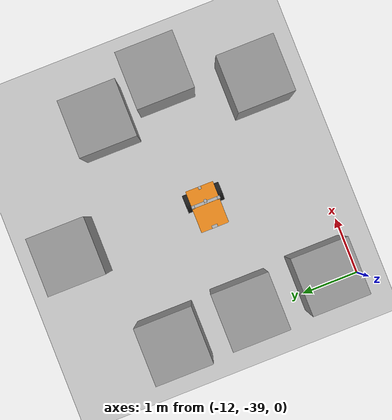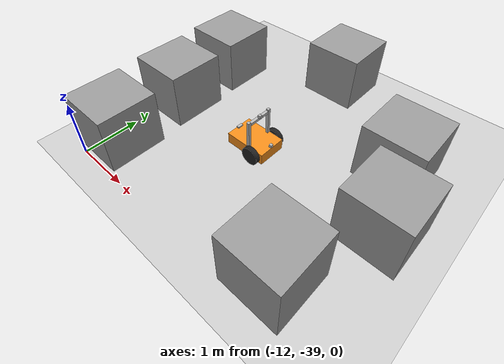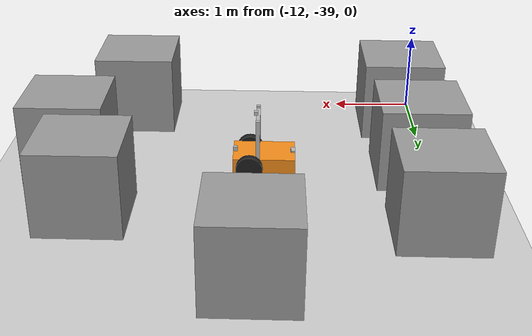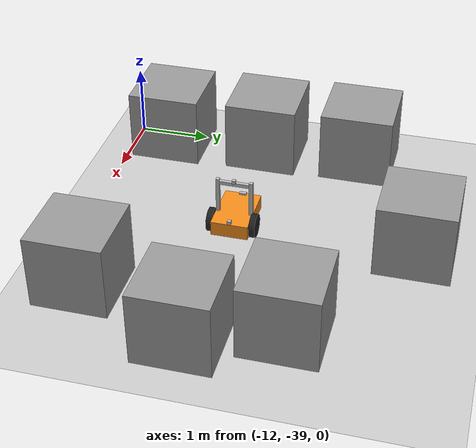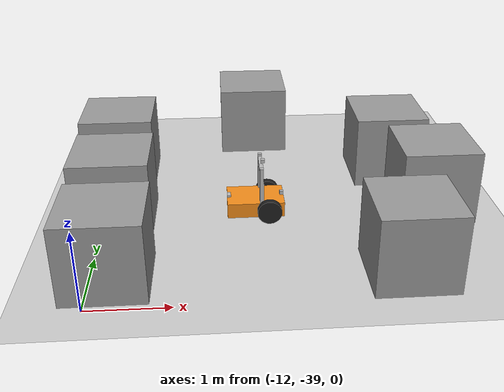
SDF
<sdf version="1.6">
 <world name="default">
  <light name="sun" type="directional">
   <pose>0 0 10 0 -0 0</pose>
   <diffuse>0.8 0.8 0.8 1</diffuse>
   <specular>0.2 0.2 0.2 1</specular>
   <attenuation>
    <range>1000</range>
    <constant>0.9</constant>
    <linear>0.01</linear>
    <quadratic>0.001</quadratic>
   </attenuation>
   <direction>-0.5 0.1 -0.9</direction>
  </light>
  <model name="ground_plane">
   <static>1</static>
   <link name="link">
    <collision name="collision">
     <geometry><plane><normal>0 0 1</normal><size>100 100</size></plane></geometry>
     <surface>
      <contact><collide_bitmask>65535</collide_bitmask></contact>
      <friction><ode><mu>100</mu><mu2>50</mu2></ode></friction>
     </surface>
    </collision>
    <visual name="visual">
     <cast_shadows>0</cast_shadows>
     <geometry><plane><normal>0 0 1</normal><size>100 100</size></plane></geometry>
     <material>
      <script><uri>file://media/materials/scripts/gazebo.material</uri><name>Gazebo/Grey</name></script>
     </material>
    </visual>
   </link>
  </model>
  <gravity>0 0 -9.8</gravity>
  <magnetic_field>6e-06 2.3e-05 -4.2e-05</magnetic_field>
  <atmosphere type="adiabatic"/>
  <physics name="default_physics" default="0" type="ode">
   <max_step_size>0.001</max_step_size>
   <real_time_factor>1</real_time_factor>
   <real_time_update_rate>1000</real_time_update_rate>
  </physics>
  <scene><ambient>0.4 0.4 0.4 1</ambient><background>0.7 0.7 0.7 1</background><shadows>1</shadows></scene>
  <audio><device>default</device></audio>
  <spherical_coordinates>
   <surface_model>EARTH_WGS84</surface_model>
   <latitude_deg>0</latitude_deg>
   <longitude_deg>0</longitude_deg>
   <elevation>0</elevation>
   <heading_deg>0</heading_deg>
  </spherical_coordinates>
  <model name="ugvbot">
   <link name="footprint">
    <inertial>
     <pose>-0.009261 -0 0.187905 0 -0 0</pose>
     <mass>11.23</mass>
     <inertia>
      <ixx>0.43735</ixx>
      <ixy>2.48971e-19</ixy>
      <ixz>-0.0459209</ixz>
      <iyy>0.741463</iyy>
      <iyz>9.75641e-18</iyz>
      <izz>0.5682</izz>
     </inertia>
    </inertial>
    <collision name="footprint_fixed_joint_lump__chassis_collision">
     <pose>0 0 0.16 0 -0 0</pose>
     <geometry><box><size>0.75 0.5 0.2</size></box></geometry>
    </collision>
    <collision name="footprint_fixed_joint_lump__caster_wheel_collision_1">
     <pose>-0.315 0 0.06 0 -0 0</pose>
     <geometry><sphere><radius>0.06</radius></sphere></geometry>
     <surface>
      <contact><ode><kp>1e+08</kp><kd>0.01</kd></ode></contact>
      <friction><ode><mu>0</mu><mu2>0</mu2></ode></friction>
     </surface>
    </collision>
    <collision name="footprint_fixed_joint_lump__imu_collision_2">
     <pose>-0.35 0 0.2725 0 -0 0</pose>
     <geometry><box><size>0.05 0.1 0.025</size></box></geometry>
    </collision>
    <collision name="footprint_fixed_joint_lump__laser_collision_3">
     <pose>0.35 0 0.285 0 -0 0</pose>
     <geometry><box><size>0.05 0.05 0.05</size></box></geometry>
    </collision>
    <collision name="footprint_fixed_joint_lump__left_mast_collision_4">
     <pose>0.075 0.225 0.51 0 -0 0</pose>
     <geometry><box><size>0.05 0.05 0.5</size></box></geometry>
    </collision>
    <collision name="footprint_fixed_joint_lump__right_mast_collision_5">
     <pose>0.075 -0.225 0.51 0 -0 0</pose>
     <geometry><box><size>0.05 0.05 0.5</size></box></geometry>
    </collision>
    <collision name="footprint_fixed_joint_lump__mast_link_collision_6">
     <pose>0.075 -0 0.711 0 -0 0</pose>
     <geometry><box><size>0.05 0.4 0.05</size></box></geometry>
    </collision>
    <collision name="footprint_fixed_joint_lump__camera_collision_7">
     <pose>0.1 -0 0.76 0 -0 0</pose>
     <geometry><box><size>0.05 0.05 0.05</size></box></geometry>
    </collision>
    <visual name="footprint_fixed_joint_lump__chassis_visual">
     <pose>0 0 0.16 0 -0 0</pose>
     <geometry><box><size>0.75 0.5 0.2</size></box></geometry>
     <material>
      <script><name>Gazebo/Orange</name><uri>file://media/materials/scripts/gazebo.material</uri></script>
     </material>
    </visual>
    <visual name="footprint_fixed_joint_lump__caster_wheel_visual_1">
     <pose>-0.315 0 0.06 0 -0 0</pose>
     <geometry><sphere><radius>0.06</radius></sphere></geometry>
     <material>
      <script><name>Gazebo/Grey</name><uri>file://media/materials/scripts/gazebo.material</uri></script>
     </material>
    </visual>
    <visual name="footprint_fixed_joint_lump__imu_visual_2">
     <pose>-0.35 0 0.2725 0 -0 0</pose>
     <geometry><box><size>0.05 0.1 0.025</size></box></geometry>
     <material><script><uri>__default__</uri><name>__default__</name></script></material>
    </visual>
    <visual name="footprint_fixed_joint_lump__laser_visual_3">
     <pose>0.35 0 0.285 0 -0 0</pose>
     <geometry><box><size>0.05 0.05 0.05</size></box></geometry>
     <material><script><uri>__default__</uri><name>__default__</name></script></material>
    </visual>
    <visual name="footprint_fixed_joint_lump__left_mast_visual_4">
     <pose>0.075 0.225 0.51 0 -0 0</pose>
     <geometry><box><size>0.05 0.05 0.5</size></box></geometry>
    </visual>
    <visual name="footprint_fixed_joint_lump__right_mast_visual_5">
     <pose>0.075 -0.225 0.51 0 -0 0</pose>
     <geometry><box><size>0.05 0.05 0.5</size></box></geometry>
    </visual>
    <visual name="footprint_fixed_joint_lump__mast_link_visual_6">
     <pose>0.075 -0 0.71 0 -0 0</pose>
     <geometry><box><size>0.05 0.4 0.05</size></box></geometry>
    </visual>
    <visual name="footprint_fixed_joint_lump__camera_visual_7">
     <pose>0.1 -0 0.76 0 -0 0</pose>
     <geometry><box><size>0.05 0.05 0.05</size></box></geometry>
     <material><script><uri>__default__</uri><name>__default__</name></script></material>
    </visual>
    <sensor name="imu_sensor" type="imu">
     <always_on>1</always_on>
     <update_rate>50</update_rate>
     <visualize>1</visualize>
     <plugin name="imu_controller" filename="libgazebo_ros_imu_sensor.so">
      <robotNamespace>/ugvbot</robotNamespace>
      <updateRateHZ>50.0</updateRateHZ>
      <bodyName>footprint</bodyName>
      <topicName>imu_data</topicName>
      <frameName>imu</frameName>
      <accelDrift>0.005 0.005 0.005</accelDrift>
      <accelGaussianNoise>0.005 0.005 0.005</accelGaussianNoise>
      <rateDrift>0.005 0.005 0.005</rateDrift>
      <gaussianNoise>0.005 0.005 0.005</gaussianNoise>
      <headingDrift>0.005</headingDrift>
      <headingGaussianNoise>0.005</headingGaussianNoise>
      <xyzOffset>0 0 0</xyzOffset>
      <rpyOffset>0 0 0</rpyOffset>
     </plugin>
     <pose>-0.35 0 0.2725 0 -0 0</pose>
    </sensor>
    <sensor name="head_hokuyo_sensor" type="ray">
     <visualize>1</visualize>
     <update_rate>20</update_rate>
     <ray>
      <scan>
       <horizontal>
        <samples>360</samples>
        <resolution>1</resolution>
        <min_angle>-1.5708</min_angle>
        <max_angle>1.5708</max_angle>
       </horizontal>
       <vertical><samples>1</samples><min_angle>0</min_angle><max_angle>0</max_angle></vertical>
      </scan>
      <range><min>0.04</min><max>10</max><resolution>0.1</resolution></range>
     </ray>
     <plugin name="gazebo_ros_head_hokuyo_controller" filename="libgazebo_ros_laser.so">
      <topicName>ugvbot/scan</topicName>
      <frameName>laser</frameName>
      <robotNamespace>/</robotNamespace>
     </plugin>
     <pose>0.35 0 0.285 0 -0 0</pose>
    </sensor>
    <sensor name="camera_sensor" type="depth">
     <update_rate>10</update_rate>
     <camera name="__default__">
      <horizontal_fov>1.0472</horizontal_fov>
      <image><width>640</width><height>480</height><format>R8G8B8</format></image>
      <clip><near>0.05</near><far>30</far></clip>
     </camera>
     <plugin name="camera_controller" filename="libgazebo_ros_openni_kinect.so">
      <baseline>0.2</baseline>
      <alwaysOn>1</alwaysOn>
      <updateRate>0.0</updateRate>
      <cameraName>kinect_depth_cam</cameraName>
      <imageTopicName>color/image_raw</imageTopicName>
      <cameraInfoTopicName>color/camera_info</cameraInfoTopicName>
      <depthImageTopicName>depth/image_raw</depthImageTopicName>
      <depthImageInfoTopicName>depth/camera_info</depthImageInfoTopicName>
      <pointCloudTopicName>depth/points</pointCloudTopicName>
      <frameName>camera_fake</frameName>
      <pointCloudCutoff>0.5</pointCloudCutoff>
      <pointCloudCutoffMax>10.0</pointCloudCutoffMax>
      <distortionK1>0.00000001</distortionK1>
      <distortionK2>0.00000001</distortionK2>
      <distortionK3>0.00000001</distortionK3>
      <distortionT1>0.00000001</distortionT1>
      <distortionT2>0.00000001</distortionT2>
      <CxPrime>0</CxPrime>
      <Cx>0</Cx>
      <Cy>0</Cy>
      <focalLength>0</focalLength>
      <hackBaseline>0.0</hackBaseline>
      <robotNamespace>/</robotNamespace>
     </plugin>
     <pose>0.1 -0 0.76 0 -0 0</pose>
    </sensor>
   </link>
   <link name="left_wheel">
    <pose>0.175 0.29 0.16 0 -0 0</pose>
    <inertial>
     <pose>0 0 0.0001 1.57079 1.57079 3.14159</pose>
     <mass>2.5</mass>
     <inertia>
      <ixx>0.0173333</ixx>
      <ixy>0</ixy>
      <ixz>0</ixz>
      <iyy>0.0173333</iyy>
      <iyz>0</iyz>
      <izz>0.032</izz>
     </inertia>
    </inertial>
    <collision name="left_wheel_collision">
     <pose>0 0 0.0001 3.14159 1.57079 -1.57079</pose>
     <geometry><cylinder><length>0.08</length><radius>0.16</radius></cylinder></geometry>
     <surface>
      <contact><ode><kp>1e+07</kp><kd>0.01</kd></ode></contact>
      <friction><ode><mu>1000</mu><mu2>1000</mu2></ode></friction>
     </surface>
    </collision>
    <visual name="left_wheel_visual">
     <pose>0 0 0.0001 3.14159 1.57079 -1.57079</pose>
     <geometry><cylinder><length>0.08</length><radius>0.16</radius></cylinder></geometry>
     <material>
      <script><name>Gazebo/Black</name><uri>file://media/materials/scripts/gazebo.material</uri></script>
     </material>
    </visual>
   </link>
   <joint name="left_wheel_hinge" type="revolute">
    <child>left_wheel</child>
    <parent>footprint</parent>
    <axis>
     <xyz>0 1 0</xyz>
     <limit><lower>-1e+16</lower><upper>1e+16</upper></limit>
     <dynamics><spring_reference>0</spring_reference><spring_stiffness>0</spring_stiffness></dynamics>
     <use_parent_model_frame>1</use_parent_model_frame>
    </axis>
   </joint>
   <link name="right_wheel">
    <pose>0.175 -0.29 0.16 0 -0 0</pose>
    <inertial>
     <pose>0 0 0.0001 1.57079 1.57079 3.14159</pose>
     <mass>2.5</mass>
     <inertia>
      <ixx>0.0173333</ixx>
      <ixy>0</ixy>
      <ixz>0</ixz>
      <iyy>0.0173333</iyy>
      <iyz>0</iyz>
      <izz>0.032</izz>
     </inertia>
    </inertial>
    <collision name="right_wheel_collision">
     <pose>0 0 0.0001 3.14159 1.57079 -1.57079</pose>
     <geometry><cylinder><length>0.08</length><radius>0.16</radius></cylinder></geometry>
     <surface>
      <contact><ode><kp>1e+07</kp><kd>0.01</kd></ode></contact>
      <friction><ode><mu>1000</mu><mu2>1000</mu2></ode></friction>
     </surface>
    </collision>
    <visual name="right_wheel_visual">
     <pose>0 0 0.0001 3.14159 1.57079 -1.57079</pose>
     <geometry><cylinder><length>0.08</length><radius>0.16</radius></cylinder></geometry>
     <material>
      <script><name>Gazebo/Black</name><uri>file://media/materials/scripts/gazebo.material</uri></script>
     </material>
    </visual>
   </link>
   <joint name="right_wheel_hinge" type="revolute">
    <child>right_wheel</child>
    <parent>footprint</parent>
    <axis>
     <xyz>0 1 0</xyz>
     <limit><lower>-1e+16</lower><upper>1e+16</upper></limit>
     <dynamics><spring_reference>0</spring_reference><spring_stiffness>0</spring_stiffness></dynamics>
     <use_parent_model_frame>1</use_parent_model_frame>
    </axis>
   </joint>
   <static>0</static>
   <plugin name="gazebo_ros_control" filename="libgazebo_ros_control.so">
    <robotNamespace>/ugvbot</robotNamespace>
    <legacyModeNS>1</legacyModeNS>
    <robotSimType>gazebo_ros_control/DefaultRobotHWSim</robotSimType>
   </plugin>
   <pose>-9.9998 -37.0001 -6.6e-05 0 0.000209 0.000645</pose>
  </model>
  <model name="unit_box">
   <pose>-7.63549 -37.0103 0.499995 0 1e-05 0</pose>
   <link name="link">
    <inertial>
     <mass>1</mass>
     <inertia>
      <ixx>0.166667</ixx>
      <ixy>0</ixy>
      <ixz>0</ixz>
      <iyy>0.166667</iyy>
      <iyz>0</iyz>
      <izz>0.166667</izz>
     </inertia>
    </inertial>
    <collision name="collision"><geometry><box><size>1 1 1</size></box></geometry></collision>
    <visual name="visual">
     <geometry><box><size>1 1 1</size></box></geometry>
     <material>
      <script><name>Gazebo/Grey</name><uri>file://media/materials/scripts/gazebo.material</uri></script>
     </material>
    </visual>
   </link>
  </model>
  <model name="unit_box_0">
   <pose>-8.02392 -35.8596 0.499995 -1e-05 -0 -0</pose>
   <link name="link">
    <inertial>
     <mass>1</mass>
     <inertia>
      <ixx>0.166667</ixx>
      <ixy>0</ixy>
      <ixz>0</ixz>
      <iyy>0.166667</iyy>
      <iyz>0</iyz>
      <izz>0.166667</izz>
     </inertia>
    </inertial>
    <collision name="collision"><geometry><box><size>1 1 1</size></box></geometry></collision>
    <visual name="visual">
     <geometry><box><size>1 1 1</size></box></geometry>
     <material>
      <script><name>Gazebo/Grey</name><uri>file://media/materials/scripts/gazebo.material</uri></script>
     </material>
    </visual>
   </link>
  </model>
  <model name="unit_box_1">
   <pose>-9.91571 -34.5767 0.499995 0 1e-05 0</pose>
   <link name="link">
    <inertial>
     <mass>1</mass>
     <inertia>
      <ixx>0.166667</ixx>
      <ixy>0</ixy>
      <ixz>0</ixz>
      <iyy>0.166667</iyy>
      <iyz>0</iyz>
      <izz>0.166667</izz>
     </inertia>
    </inertial>
    <collision name="collision"><geometry><box><size>1 1 1</size></box></geometry></collision>
    <visual name="visual">
     <geometry><box><size>1 1 1</size></box></geometry>
     <material>
      <script><name>Gazebo/Grey</name><uri>file://media/materials/scripts/gazebo.material</uri></script>
     </material>
    </visual>
   </link>
  </model>
  <model name="unit_box_2">
   <pose>-11.8933 -35.6626 0.499995 -1e-05 -0 -0</pose>
   <link name="link">
    <inertial>
     <mass>1</mass>
     <inertia>
      <ixx>0.166667</ixx>
      <ixy>0</ixy>
      <ixz>0</ixz>
      <iyy>0.166667</iyy>
      <iyz>0</iyz>
      <izz>0.166667</izz>
     </inertia>
    </inertial>
    <collision name="collision"><geometry><box><size>1 1 1</size></box></geometry></collision>
    <visual name="visual">
     <geometry><box><size>1 1 1</size></box></geometry>
     <material>
      <script><name>Gazebo/Grey</name><uri>file://media/materials/scripts/gazebo.material</uri></script>
     </material>
    </visual>
   </link>
  </model>
  <model name="unit_box_3">
   <pose>-11.7761 -38.4274 0.499995 0 1e-05 0</pose>
   <link name="link">
    <inertial>
     <mass>1</mass>
     <inertia>
      <ixx>0.166667</ixx>
      <ixy>0</ixy>
      <ixz>0</ixz>
      <iyy>0.166667</iyy>
      <iyz>0</iyz>
      <izz>0.166667</izz>
     </inertia>
    </inertial>
    <collision name="collision"><geometry><box><size>1 1 1</size></box></geometry></collision>
    <visual name="visual">
     <geometry><box><size>1 1 1</size></box></geometry>
     <material>
      <script><name>Gazebo/Grey</name><uri>file://media/materials/scripts/gazebo.material</uri></script>
     </material>
    </visual>
   </link>
  </model>
  <model name="unit_box_4">
   <pose>-8.28254 -38.5123 0.499995 -1e-05 -0 0</pose>
   <link name="link">
    <inertial>
     <mass>1</mass>
     <inertia>
      <ixx>0.166667</ixx>
      <ixy>0</ixy>
      <ixz>0</ixz>
      <iyy>0.166667</iyy>
      <iyz>0</iyz>
      <izz>0.166667</izz>
     </inertia>
    </inertial>
    <collision name="collision"><geometry><box><size>1 1 1</size></box></geometry></collision>
    <visual name="visual">
     <geometry><box><size>1 1 1</size></box></geometry>
     <material>
      <script><name>Gazebo/Grey</name><uri>file://media/materials/scripts/gazebo.material</uri></script>
     </material>
    </visual>
   </link>
  </model>
  <model name="unit_box_5">
   <pose>-11.8363 -37.0204 0.5 0 -0 0</pose>
   <link name="link">
    <inertial>
     <mass>1</mass>
     <inertia>
      <ixx>0.166667</ixx>
      <ixy>0</ixy>
      <ixz>0</ixz>
      <iyy>0.166667</iyy>
      <iyz>0</iyz>
      <izz>0.166667</izz>
     </inertia>
    </inertial>
    <collision name="collision"><geometry><box><size>1 1 1</size></box></geometry></collision>
    <visual name="visual">
     <geometry><box><size>1 1 1</size></box></geometry>
     <material>
      <script><name>Gazebo/Grey</name><uri>file://media/materials/scripts/gazebo.material</uri></script>
     </material>
    </visual>
   </link>
  </model>
 </world>
</sdf>
